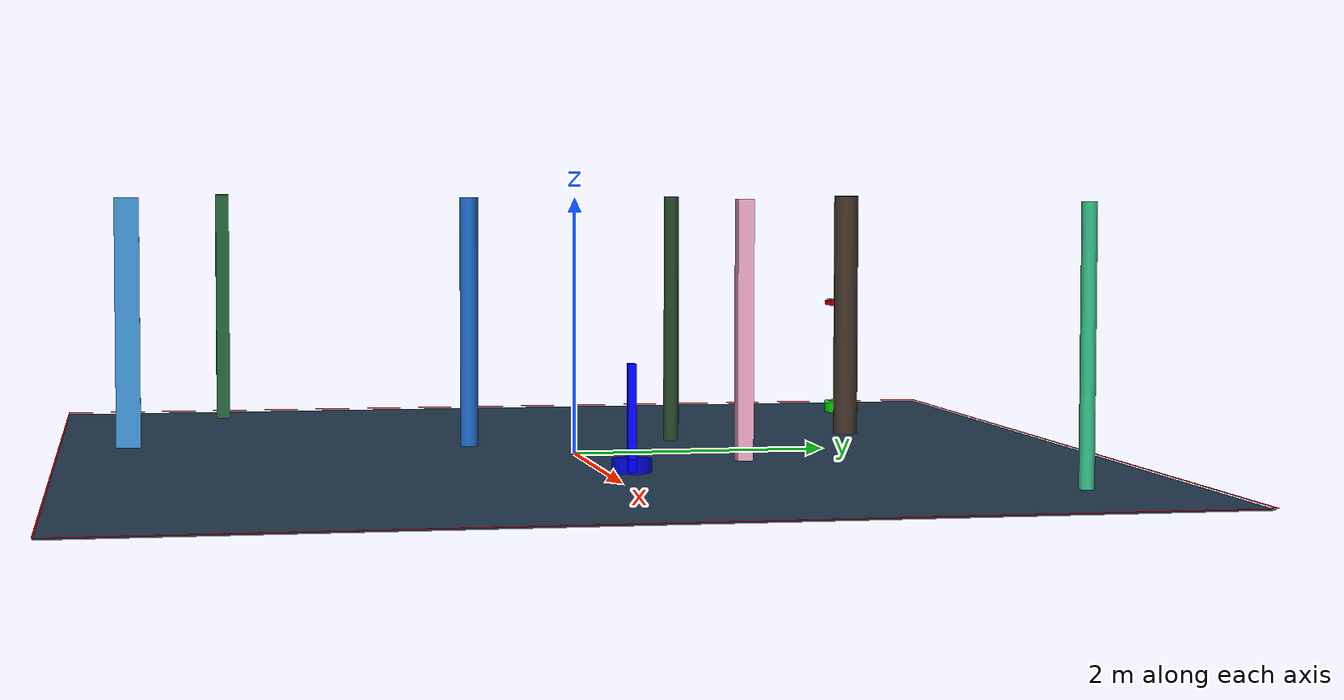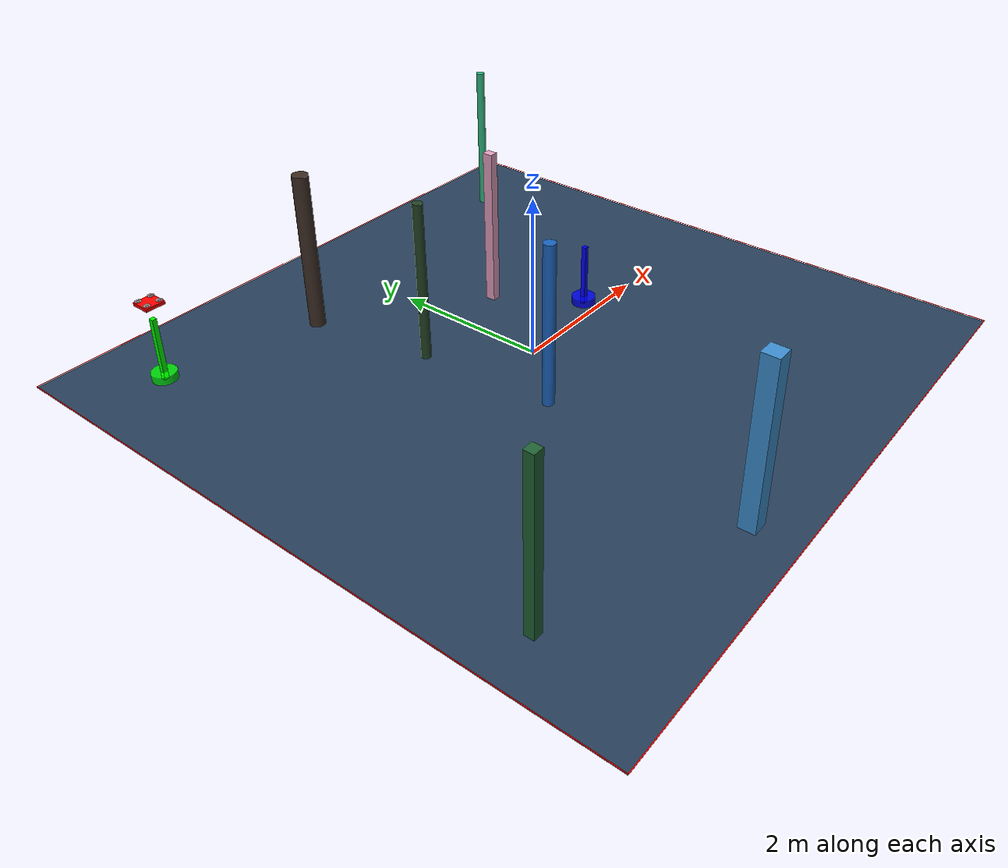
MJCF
<?xml version='1.0' encoding='utf-8'?>
<mujoco model="complex_uav_env">
  <compiler angle="degree" coordinate="local" inertiafromgeom="true" />
  <option integrator="RK4" timestep="0.01" />

  <visual>
    <headlight diffuse="0.6 0.6 0.6" ambient="0.3 0.3 0.3" />
    <rgba haze="0.15 0.25 0.35 1" />
    <global offwidth="2560" offheight="1440" />
  </visual>

  <asset>
    <texture type="skybox" builtin="gradient" rgb1="0.3 0.5 0.7" rgb2="0 0 0" width="512" height="3072" />
    <texture name="grid" type="2d" builtin="checker" rgb1="0.1 0.2 0.3" rgb2="0.2 0.3 0.4" width="512" height="512" />
    <material name="grid" texture="grid" texrepeat="1 1" />
  </asset>

  <worldbody>

    <geom name="ground" type="plane" size="4.0 4.0 0.1" material="grid" />
    <light name="light1" pos="0 0 4" dir="0 0 -1" diffuse="1 1 1" />

    <geom name="start_marker" type="cylinder" size="0.15 0.05" pos="-3.0 3.0 0.05" rgba="0 1 0 0.8" />
    <geom name="start_pole" type="box" size="0.03 0.03 0.4" pos="-3.0 3.0 0.4" rgba="0 1 0 1" />

    <geom name="goal_marker" type="cylinder" size="0.15 0.05" pos="1.3100208002359377 0.20146242175015594 0.05" rgba="0 0 1 0.8" />
    <geom name="goal_pole" type="box" size="0.03 0.03 0.4" pos="1.3100208002359377 0.20146242175015594 0.4" rgba="0 0 1 1" />

    <body name="chassis" pos="-3.0 3.0 1.0">
      <joint type="free" name="root" />
      <geom type="box" size="0.12 0.12 0.02" rgba="1.0 0.0 0.0 1.0" mass="0.8" />

      <geom type="box" size="0.08 0.01 0.005" pos="0 0 0.01" rgba="0.3 0.3 0.3 1" />
      <geom type="box" size="0.01 0.08 0.005" pos="0 0 0.01" rgba="0.3 0.3 0.3 1" />

      <geom type="cylinder" size="0.015 0.02" pos="0.08 0.08 0.015" rgba="0.2 0.2 0.2 1" />
      <geom type="cylinder" size="0.015 0.02" pos="-0.08 0.08 0.015" rgba="0.2 0.2 0.2 1" />
      <geom type="cylinder" size="0.015 0.02" pos="0.08 -0.08 0.015" rgba="0.2 0.2 0.2 1" />
      <geom type="cylinder" size="0.015 0.02" pos="-0.08 -0.08 0.015" rgba="0.2 0.2 0.2 1" />

      <geom type="cylinder" size="0.04 0.002" pos="0.08 0.08 0.035" rgba="0.7 0.7 0.7 0.8" />
      <geom type="cylinder" size="0.04 0.002" pos="-0.08 0.08 0.035" rgba="0.7 0.7 0.7 0.8" />
      <geom type="cylinder" size="0.04 0.002" pos="0.08 -0.08 0.035" rgba="0.7 0.7 0.7 0.8" />
      <geom type="cylinder" size="0.04 0.002" pos="-0.08 -0.08 0.035" rgba="0.7 0.7 0.7 0.8" />

      <site name="motor1" pos="0.08 0.08 0" size="0.01" />
      <site name="motor2" pos="-0.08 0.08 0" size="0.01" />
      <site name="motor3" pos="0.08 -0.08 0" size="0.01" />
      <site name="motor4" pos="-0.08 -0.08 0" size="0.01" />
    </body>
    <geom name="test_obs_0" type="cylinder" size="0.05506919371006252 1.0" pos="2.8106169675277757 3.1354529107715963 1.0" rgba="0.18334800867035544 0.7038665167323339 0.49519565707490487 1.0" />
    <geom name="test_obs_1" type="cylinder" size="0.0731792464160746 1.0" pos="-0.6855900550533325 -0.7443152540058481 1.0" rgba="0.1025517473654226 0.3879089499254166 0.739745008895249 1.0" />
    <geom name="test_obs_2" type="cylinder" size="0.060947988734947604 1.0" pos="-0.8354037088560535 0.9466136508174889 1.0" rgba="0.13373848949209624 0.25834369152226233 0.1423134116293035 1.0" />
    <geom name="test_obs_3" type="box" size="0.09826349049731847 0.09795558839694213 1.0" pos="-1.0675469257385517 -3.4535015258139277 1.0" rgba="0.23831161928291966 0.5573547402165143 0.8119908582810929 1.0" />
    <geom name="test_obs_4" type="box" size="0.05871807366365043 0.05727166621141633 1.0" pos="-3.3792356315532293 -2.626366544506879 1.0" rgba="0.1268815671167392 0.3840260343716623 0.20673671058288587 1.0" />
    <geom name="test_obs_5" type="box" size="0.05376953457943489 0.06262107405679102 1.0" pos="0.6964352249035426 1.1951805957517991 1.0" rgba="0.8953176740694263 0.626978632616212 0.7506491643392458 1.0" />
    <geom name="test_obs_6" type="cylinder" size="0.09981677539684111 1.0" pos="-1.1201186552254896 2.507915747329932 1.0" rgba="0.238473381456289 0.1800460875531072 0.14600852696550728 1.0" />
  <geom name="boundary_north" type="box" size="4.0 0.005 0.002" pos="0 4.0 0.002" rgba="1.0 0.0 0.0 1.0" /><geom name="boundary_south" type="box" size="4.0 0.005 0.002" pos="0 -4.0 0.002" rgba="1.0 0.0 0.0 1.0" /><geom name="boundary_east" type="box" size="0.005 4.0 0.002" pos="4.0 0 0.002" rgba="1.0 0.0 0.0 1.0" /><geom name="boundary_west" type="box" size="0.005 4.0 0.002" pos="-4.0 0 0.002" rgba="1.0 0.0 0.0 1.0" /></worldbody>

  <actuator>
    <motor name="m1" gear="0 0 1 0 0 0" site="motor1" />
    <motor name="m2" gear="0 0 1 0 0 0" site="motor2" />
    <motor name="m3" gear="0 0 1 0 0 0" site="motor3" />
    <motor name="m4" gear="0 0 1 0 0 0" site="motor4" />
  </actuator>
</mujoco>
